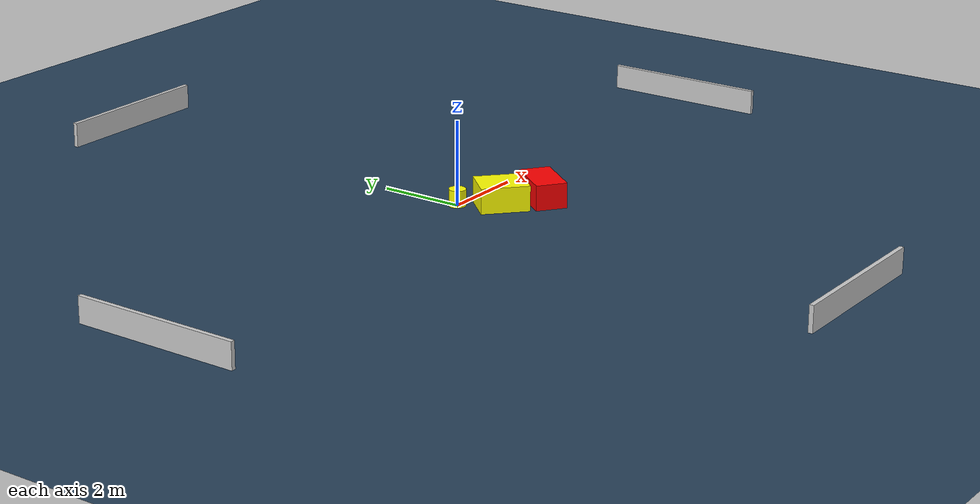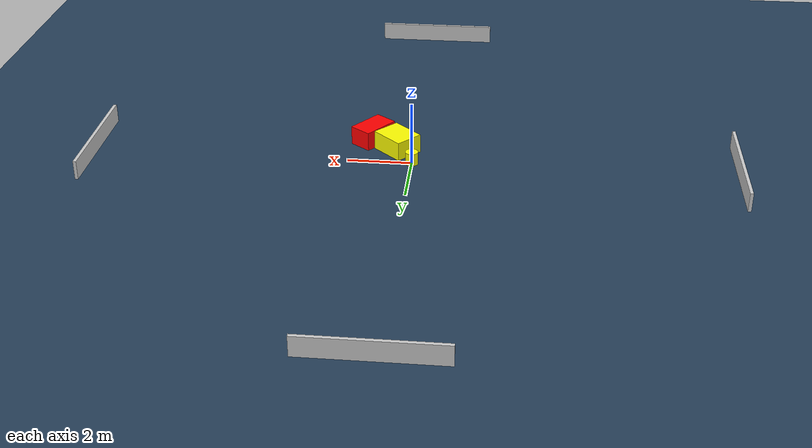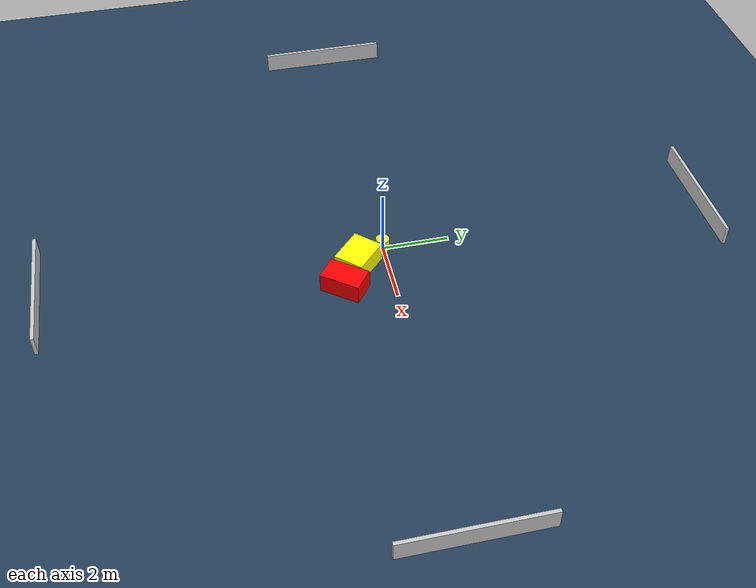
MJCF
<?xml version="1.0" ?>
<mujoco model="generated_environment">
  <option timestep="0.01" integrator="RK4" cone="elliptic"/>
  <default>
    <geom density="1"/>
  </default>
  <asset>
    <texture builtin="gradient" height="3072" name="skybox" rgb1="0.3 0.5 0.7" rgb2="0 0 0" type="skybox" width="512"/>
    <texture builtin="checker" height="300" name="groundplane" rgb1="0.2 0.3 0.4" rgb2="0.1 0.2 0.3" type="2d" width="300"/>
    <material name="groundplane" reflectance="0.2" texrepeat="5 5" texture="groundplane"/>
  </asset>
  <worldbody>
    <light dir="0 0 -1" directional="true" pos="0 0 1.5"/>
    <geom condim="3" friction="0.5 0.005 0.001" material="groundplane" name="floor" pos="0 0 0" size="0 0 0.05" type="plane"/>
    <body name="walls">
      <geom name="wall_1" condim="4" pos="-10.0 0.0 0.3" rgba="0.800000011920929 0.800000011920929 0.800000011920929 1.0" size="0.05 2.0 0.3" type="box"/>
      <geom name="wall_2" condim="4" pos="10.0 0.0 0.3" rgba="0.800000011920929 0.800000011920929 0.800000011920929 1.0" size="0.05 2.0 0.3" type="box"/>
      <geom name="wall_3" condim="4" pos="0.0 -10.0 0.3" rgba="0.800000011920929 0.800000011920929 0.800000011920929 1.0" size="2.0 0.05 0.3" type="box"/>
      <geom name="wall_4" condim="4" pos="0.0 10.0 0.3" rgba="0.800000011920929 0.800000011920929 0.800000011920929 1.0" size="2.0 0.05 0.3" type="box"/>
    </body>
    <body name="robot">
      <joint name="joint_x" type="slide" pos="0 0 0" axis="1 0 0"/>
      <joint name="joint_y" type="slide" pos="0 0 0" axis="0 1 0"/>
      <geom name="robot" type="cylinder" pos="0.0 0.0 0.2" size="0.2 0.2 0.0" mass="5.0" friction="1.0 0.005 0.0001" condim="4" rgba="1.0 1.0 0.0 1.0"/>
    </body>
    <body name="obstacle_1_movable">
      <geom name="obstacle_1_movable" condim="4" pos="0.5345893529888703 -0.8413933021550063 0.3" euler="0 0 137.1202013186553" friction="0.0 0.005 0.001" rgba="1.0 1.0 0.0 1.0" size="0.5680947580416588 0.45782711603619697 0.3" type="box" mass="0.1"/>
      <joint type="free"/>
    </body>
    <body name="obstacle_2_static">
      <geom name="obstacle_2_static" condim="4" pos="1.3726459224338794 -1.4063662423816088 0.3" euler="0 0 142.97970494897274" friction="0.0 0.005 0.001" rgba="1.0 0.0 0.0 1.0" size="0.36816466391536884 0.6044547693718163 0.3" type="box"/>
    </body>
  </worldbody>
  <actuator>
    <motor name="actuator_x" joint="joint_x" gear="1" ctrlrange="-1 1"/>
    <motor name="actuator_y" joint="joint_y" gear="1" ctrlrange="-1 1"/>
  </actuator>
</mujoco>
